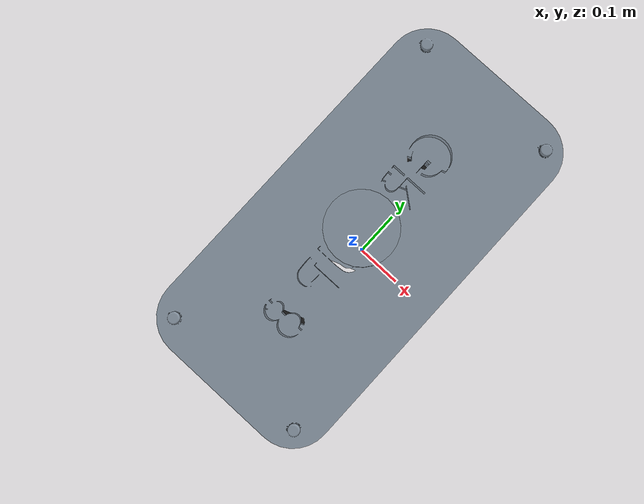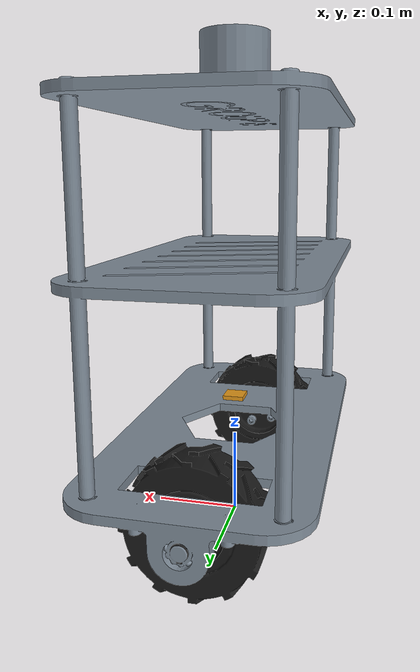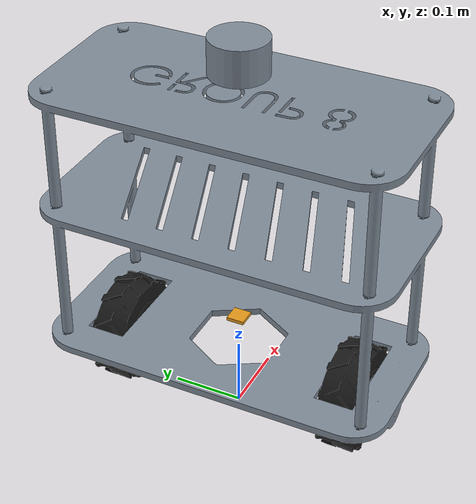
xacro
<?xml version="1.0"?>
<robot xmlns:xacro="http://www.ros.org/wiki/xacro" name="two_wheel_robot">

  <xacro:arg name="use_sim" default="true"/>
  <xacro:arg name="use_ros2_control" default="true"/>
  <xacro:arg name="use_mesh_visuals" default="true"/>

  <xacro:include filename="$(find two_wheel_robot)/description/inertial_macros.xacro"/>
  <xacro:include filename="$(find two_wheel_robot)/description/robot_core.xacro"/>

  <xacro:if value="$(arg use_sim)">
    <xacro:if value="$(arg use_ros2_control)">
      <xacro:include filename="$(find two_wheel_robot)/description/ros2_control.xacro"/>
    </xacro:if>
    <xacro:include filename="$(find two_wheel_robot)/description/gazebo.xacro"/>
  </xacro:if>

</robot>

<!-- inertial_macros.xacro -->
<robot xmlns:xacro="http://www.ros.org/wiki/xacro">

  <xacro:macro name="inertial_box" params="mass x y z *origin">
    <inertial>
      <xacro:insert_block name="origin"/>
      <mass value="${mass}"/>
      <inertia
        ixx="${(1.0/12.0) * mass * (y*y + z*z)}"
        iyy="${(1.0/12.0) * mass * (x*x + z*z)}"
        izz="${(1.0/12.0) * mass * (x*x + y*y)}"
        ixy="0" ixz="0" iyz="0"/>
    </inertial>
  </xacro:macro>

  <!-- Solid cylinder, axis along Y (wheel-style). -->
  <xacro:macro name="inertial_cylinder_y" params="mass radius length *origin">
    <inertial>
      <xacro:insert_block name="origin"/>
      <mass value="${mass}"/>
      <inertia
        ixx="${(1.0/12.0) * mass * (3*radius*radius + length*length)}"
        iyy="${0.5 * mass * radius*radius}"
        izz="${(1.0/12.0) * mass * (3*radius*radius + length*length)}"
        ixy="0" ixz="0" iyz="0"/>
    </inertial>
  </xacro:macro>

  <!-- Solid sphere. -->
  <xacro:macro name="inertial_sphere" params="mass radius *origin">
    <inertial>
      <xacro:insert_block name="origin"/>
      <mass value="${mass}"/>
      <inertia
        ixx="${0.4 * mass * radius*radius}"
        iyy="${0.4 * mass * radius*radius}"
        izz="${0.4 * mass * radius*radius}"
        ixy="0" ixz="0" iyz="0"/>
    </inertial>
  </xacro:macro>

</robot>

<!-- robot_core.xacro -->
<robot xmlns:xacro="http://www.ros.org/wiki/xacro">

  <!-- ============ Robot constants (single source of truth) ============ -->
  <xacro:property name="wheel_radius"     value="0.075"/>
  <xacro:property name="wheel_width"      value="0.050"/>
  <xacro:property name="wheel_separation" value="0.345"/>

  <xacro:property name="base_mass"  value="12.1121"/>
  <xacro:property name="base_sx"    value="0.50"/>    <!-- forward extent (collision + inertia) -->
  <xacro:property name="base_sy"    value="0.25"/>    <!-- lateral extent (collision + inertia; kept inside wheel inner faces at ±0.147 m) -->
  <xacro:property name="base_sz"    value="0.455"/>   <!-- vertical extent -->
  <xacro:property name="base_cog_z" value="0.293"/>   <!-- COG height above ground -->

  <xacro:property name="wheel_mass" value="0.585317"/>

  <xacro:property name="imu_offset_z" value="0.15"/>

  <!-- ============ Materials (for RViz) ============ -->
  <material name="chassis_grey"><color rgba="0.50 0.55 0.60 1.0"/></material>
  <material name="wheel_black">  <color rgba="0.10 0.10 0.10 1.0"/></material>
  <material name="imu_orange">   <color rgba="0.90 0.60 0.10 1.0"/></material>

  <!-- ============ base_footprint (planar reference, used by Nav2 etc.) ============ -->
  <link name="base_footprint"/>

  <joint name="base_footprint_to_base_link" type="fixed">
    <parent link="base_footprint"/>
    <child  link="base_link"/>
    <origin xyz="0 0 0" rpy="0 0 0"/>
  </joint>

  <!-- ============ base_link ============ -->
  <link name="base_link">
    <xacro:if value="$(arg use_mesh_visuals)">
      <visual>
        <origin xyz="0 0 0" rpy="0 0 0"/>
        <geometry>
          <mesh filename="file://$(find two_wheel_robot)/meshes/base_link.stl" scale="1 1 1"/>
        </geometry>
        <material name="chassis_grey"/>
      </visual>
    </xacro:if>
    <xacro:unless value="$(arg use_mesh_visuals)">
      <visual>
        <origin xyz="0 0 ${base_cog_z - 0.02}" rpy="0 0 0"/>
        <geometry>
          <box size="${base_sx} ${base_sy} ${base_sz}"/>
        </geometry>
        <material name="chassis_grey"/>
      </visual>
    </xacro:unless>
    <collision>
      <origin xyz="0 0 ${base_cog_z - 0.02}" rpy="0 0 0"/>
      <geometry>
        <box size="${base_sx} ${base_sy} ${base_sz}"/>
      </geometry>
    </collision>
    <xacro:inertial_box mass="${base_mass}" x="${base_sx}" y="${base_sy}" z="${base_sz}">
      <origin xyz="0 0 ${base_cog_z}" rpy="0 0 0"/>
    </xacro:inertial_box>
  </link>

  <!-- ============ left_wheel_link ============ -->
  <link name="left_wheel_link">
    <xacro:if value="$(arg use_mesh_visuals)">
      <visual>
        <origin xyz="0 0 0" rpy="0 0 0"/>
        <geometry>
          <mesh filename="file://$(find two_wheel_robot)/meshes/left_wheel_link.stl" scale="1 1 1"/>
        </geometry>
        <material name="wheel_black"/>
      </visual>
    </xacro:if>
    <xacro:unless value="$(arg use_mesh_visuals)">
      <visual>
        <origin xyz="0 0 0" rpy="1.5707963 0 0"/>
        <geometry>
          <cylinder radius="${wheel_radius}" length="${wheel_width}"/>
        </geometry>
        <material name="wheel_black"/>
      </visual>
    </xacro:unless>
    <collision>
      <origin xyz="0 0 0" rpy="1.5707963 0 0"/>
      <geometry>
        <cylinder radius="${wheel_radius}" length="${wheel_width}"/>
      </geometry>
    </collision>
    <xacro:inertial_cylinder_y mass="${wheel_mass}" radius="${wheel_radius}" length="${wheel_width}">
      <origin xyz="0 0 0" rpy="0 0 0"/>
    </xacro:inertial_cylinder_y>
  </link>

  <joint name="left_wheel_joint" type="continuous">
    <parent link="base_link"/>
    <child  link="left_wheel_link"/>
    <origin xyz="0 ${wheel_separation / 2} ${wheel_radius}" rpy="0 0 0"/>
    <axis xyz="0 1 0"/>
    <dynamics damping="0.01" friction="0.001"/>
  </joint>

  <!-- ============ right_wheel_link ============ -->
  <link name="right_wheel_link">
    <xacro:if value="$(arg use_mesh_visuals)">
      <visual>
        <origin xyz="0 0 0" rpy="0 0 0"/>
        <geometry>
          <mesh filename="file://$(find two_wheel_robot)/meshes/right_wheel_link.stl" scale="1 1 1"/>
        </geometry>
        <material name="wheel_black"/>
      </visual>
    </xacro:if>
    <xacro:unless value="$(arg use_mesh_visuals)">
      <visual>
        <origin xyz="0 0 0" rpy="1.5707963 0 0"/>
        <geometry>
          <cylinder radius="${wheel_radius}" length="${wheel_width}"/>
        </geometry>
        <material name="wheel_black"/>
      </visual>
    </xacro:unless>
    <collision>
      <origin xyz="0 0 0" rpy="1.5707963 0 0"/>
      <geometry>
        <cylinder radius="${wheel_radius}" length="${wheel_width}"/>
      </geometry>
    </collision>
    <xacro:inertial_cylinder_y mass="${wheel_mass}" radius="${wheel_radius}" length="${wheel_width}">
      <origin xyz="0 0 0" rpy="0 0 0"/>
    </xacro:inertial_cylinder_y>
  </link>

  <joint name="right_wheel_joint" type="continuous">
    <parent link="base_link"/>
    <child  link="right_wheel_link"/>
    <origin xyz="0 -${wheel_separation / 2} ${wheel_radius}" rpy="0 0 0"/>
    <axis xyz="0 1 0"/>
    <dynamics damping="0.01" friction="0.001"/>
  </joint>

  <!-- ============ imu_link ============ -->
  <link name="imu_link">
    <visual>
      <origin xyz="0 0 0" rpy="0 0 0"/>
      <geometry>
        <box size="0.025 0.025 0.005"/>
      </geometry>
      <material name="imu_orange"/>
    </visual>
    <xacro:inertial_box mass="0.01" x="0.025" y="0.025" z="0.005">
      <origin xyz="0 0 0" rpy="0 0 0"/>
    </xacro:inertial_box>
  </link>

  <joint name="imu_joint" type="fixed">
    <parent link="base_link"/>
    <child  link="imu_link"/>
    <origin xyz="0 0 ${imu_offset_z}" rpy="0 0 0"/>
  </joint>

  <!-- ============ lidar_link ============ -->
  <link name="lidar_link">
    <visual>
      <origin xyz="0 0 0" rpy="0 0 0"/>
      <geometry><cylinder radius="0.04" length="0.05"/></geometry>
      <material name="chassis_grey"/>
    </visual>
    <!-- No collision: sensor only; avoids ODE penetration with chassis top -->
    <xacro:inertial_box mass="0.15" x="0.08" y="0.08" z="0.05">
      <origin xyz="0 0 0" rpy="0 0 0"/>
    </xacro:inertial_box>
  </link>

  <joint name="lidar_joint" type="fixed">
    <parent link="base_link"/>
    <child  link="lidar_link"/>
    <origin xyz="0 0 0.55" rpy="0 0 0"/>
  </joint>

</robot>
